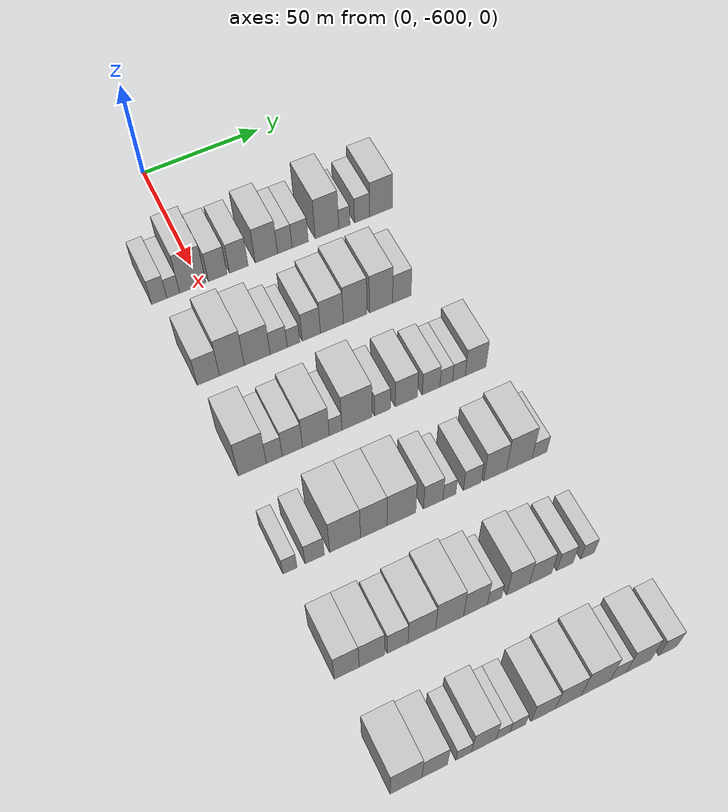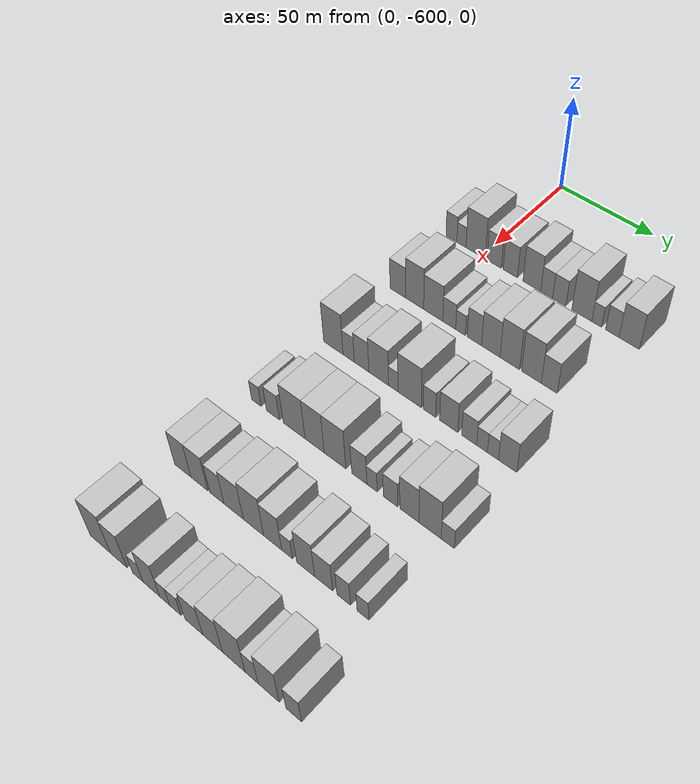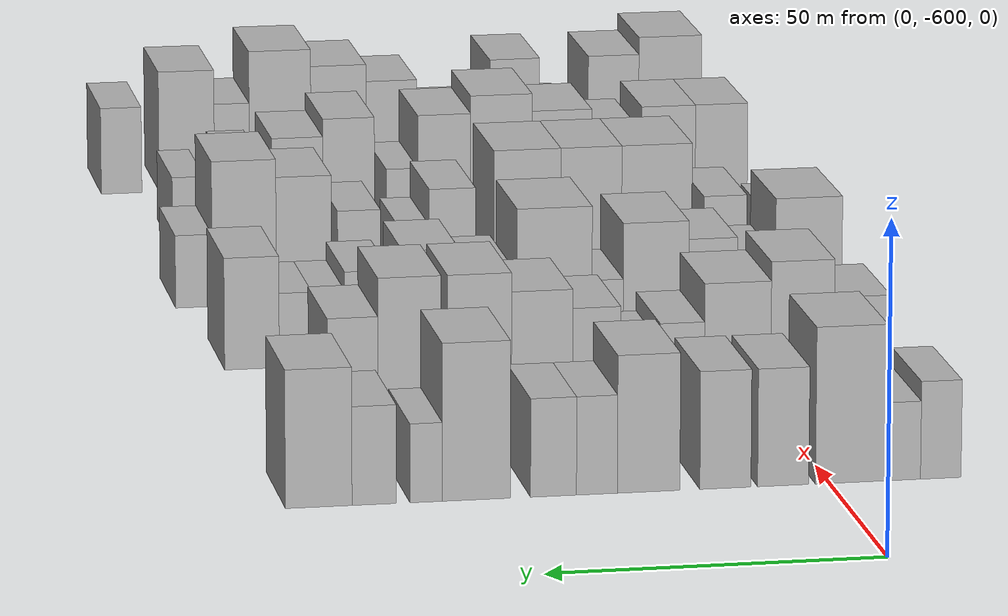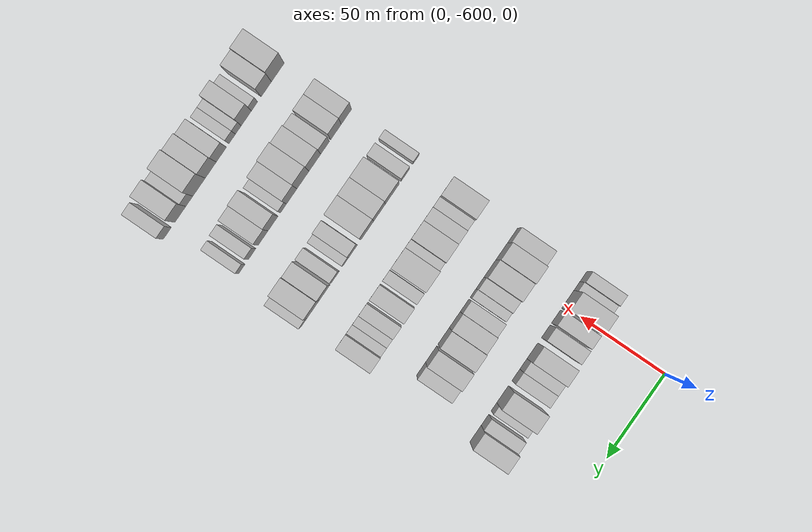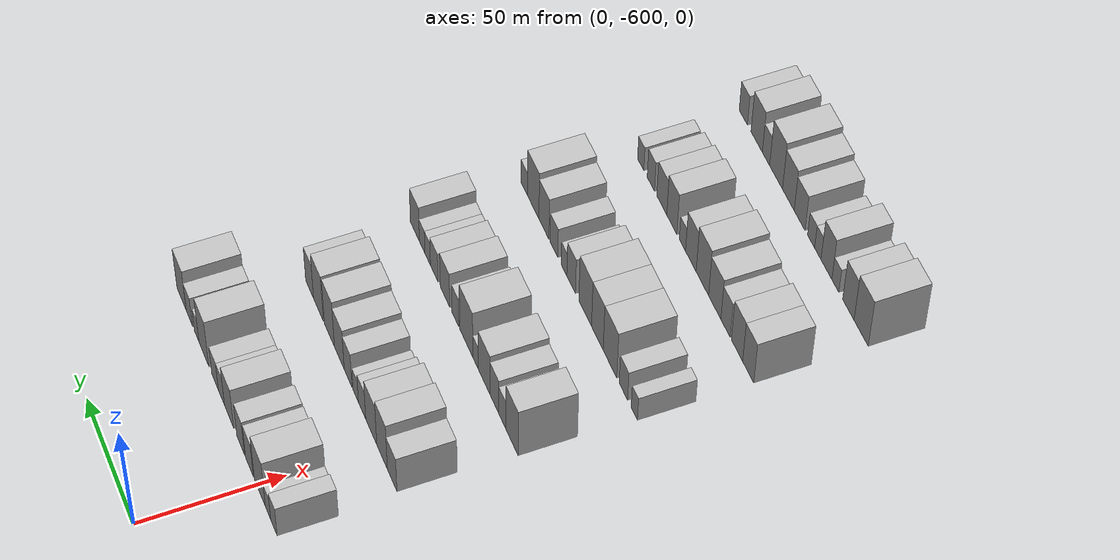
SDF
<sdf version="1.6">
 <world name="default">
  <model name="building_1">
   <static>1</static>
   <pose>50.0000 -616.9183 0 0.000000 0.000000 0.000000</pose>
   <link name="link">
    <pose>0 0 7.50 0 0 0</pose>
    <collision name="collision"><geometry><box><size>20.0000 6.1633 15.0000</size></box></geometry></collision>
    <visual name="visual">
     <cast_shadows>0</cast_shadows>
     <geometry><box><size>20.0000 6.1633 15.0000</size></box></geometry>
     <material>
      <script>
       <uri>model://HANNAS_wall/materials/scripts</uri>
       <uri>model://HANNAS_wall/materials/textures</uri>
       <name>vrc/HANNAS_wall</name>
      </script>
     </material>
    </visual>
   </link>
  </model>
  <model name="building_2">
   <static>1</static>
   <pose>50.0000 -611.2370 0 0.000000 0.000000 0.000000</pose>
   <link name="link">
    <pose>0 0 6.00 0 0 0</pose>
    <collision name="collision"><geometry><box><size>20.0000 5.1993 12.0000</size></box></geometry></collision>
    <visual name="visual">
     <cast_shadows>0</cast_shadows>
     <geometry><box><size>20.0000 5.1993 12.0000</size></box></geometry>
     <material>
      <script>
       <uri>model://HANNAS_wall/materials/scripts</uri>
       <uri>model://HANNAS_wall/materials/textures</uri>
       <name>vrc/HANNAS_wall</name>
      </script>
     </material>
    </visual>
   </link>
  </model>
  <model name="building_3">
   <static>1</static>
   <pose>50.0000 -603.2668 0 0.000000 0.000000 0.000000</pose>
   <link name="link">
    <pose>0 0 12.00 0 0 0</pose>
    <collision name="collision"><geometry><box><size>20.0000 10.7413 24.0000</size></box></geometry></collision>
    <visual name="visual">
     <cast_shadows>0</cast_shadows>
     <geometry><box><size>20.0000 10.7413 24.0000</size></box></geometry>
     <material>
      <script>
       <uri>model://HANNAS_wall/materials/scripts</uri>
       <uri>model://HANNAS_wall/materials/textures</uri>
       <name>vrc/HANNAS_wall</name>
      </script>
     </material>
    </visual>
   </link>
  </model>
  <model name="building_4">
   <static>1</static>
   <pose>50.0000 -593.0272 0 0.000000 0.000000 0.000000</pose>
   <link name="link">
    <pose>0 0 9.00 0 0 0</pose>
    <collision name="collision"><geometry><box><size>20.0000 7.7378 18.0000</size></box></geometry></collision>
    <visual name="visual">
     <cast_shadows>0</cast_shadows>
     <geometry><box><size>20.0000 7.7378 18.0000</size></box></geometry>
     <material>
      <script>
       <uri>model://HANNAS_wall/materials/scripts</uri>
       <uri>model://HANNAS_wall/materials/textures</uri>
       <name>vrc/HANNAS_wall</name>
      </script>
     </material>
    </visual>
   </link>
  </model>
  <model name="building_5">
   <static>1</static>
   <pose>50.0000 -584.3045 0 0.000000 0.000000 0.000000</pose>
   <link name="link">
    <pose>0 0 9.00 0 0 0</pose>
    <collision name="collision"><geometry><box><size>20.0000 7.7077 18.0000</size></box></geometry></collision>
    <visual name="visual">
     <cast_shadows>0</cast_shadows>
     <geometry><box><size>20.0000 7.7077 18.0000</size></box></geometry>
     <material>
      <script>
       <uri>model://HANNAS_wall/materials/scripts</uri>
       <uri>model://HANNAS_wall/materials/textures</uri>
       <name>vrc/HANNAS_wall</name>
      </script>
     </material>
    </visual>
   </link>
  </model>
  <model name="building_6">
   <static>1</static>
   <pose>50.0000 -572.7570 0 0.000000 0.000000 0.000000</pose>
   <link name="link">
    <pose>0 0 10.50 0 0 0</pose>
    <collision name="collision"><geometry><box><size>20.0000 9.3873 21.0000</size></box></geometry></collision>
    <visual name="visual">
     <cast_shadows>0</cast_shadows>
     <geometry><box><size>20.0000 9.3873 21.0000</size></box></geometry>
     <material>
      <script>
       <uri>model://HANNAS_wall/materials/scripts</uri>
       <uri>model://HANNAS_wall/materials/textures</uri>
       <name>vrc/HANNAS_wall</name>
      </script>
     </material>
    </visual>
   </link>
  </model>
  <model name="building_7">
   <static>1</static>
   <pose>50.0000 -564.9902 0 0.000000 0.000000 0.000000</pose>
   <link name="link">
    <pose>0 0 7.50 0 0 0</pose>
    <collision name="collision"><geometry><box><size>20.0000 6.1462 15.0000</size></box></geometry></collision>
    <visual name="visual">
     <cast_shadows>0</cast_shadows>
     <geometry><box><size>20.0000 6.1462 15.0000</size></box></geometry>
     <material>
      <script>
       <uri>model://HANNAS_wall/materials/scripts</uri>
       <uri>model://HANNAS_wall/materials/textures</uri>
       <name>vrc/HANNAS_wall</name>
      </script>
     </material>
    </visual>
   </link>
  </model>
  <model name="building_8">
   <static>1</static>
   <pose>50.0000 -558.4783 0 0.000000 0.000000 0.000000</pose>
   <link name="link">
    <pose>0 0 7.50 0 0 0</pose>
    <collision name="collision"><geometry><box><size>20.0000 6.8775 15.0000</size></box></geometry></collision>
    <visual name="visual">
     <cast_shadows>0</cast_shadows>
     <geometry><box><size>20.0000 6.8775 15.0000</size></box></geometry>
     <material>
      <script>
       <uri>model://HANNAS_wall/materials/scripts</uri>
       <uri>model://HANNAS_wall/materials/textures</uri>
       <name>vrc/HANNAS_wall</name>
      </script>
     </material>
    </visual>
   </link>
  </model>
  <model name="building_9">
   <static>1</static>
   <pose>50.0000 -546.9646 0 0.000000 0.000000 0.000000</pose>
   <link name="link">
    <pose>0 0 12.00 0 0 0</pose>
    <collision name="collision"><geometry><box><size>20.0000 10.1499 24.0000</size></box></geometry></collision>
    <visual name="visual">
     <cast_shadows>0</cast_shadows>
     <geometry><box><size>20.0000 10.1499 24.0000</size></box></geometry>
     <material>
      <script>
       <uri>model://HANNAS_wall/materials/scripts</uri>
       <uri>model://HANNAS_wall/materials/textures</uri>
       <name>vrc/HANNAS_wall</name>
      </script>
     </material>
    </visual>
   </link>
  </model>
  <model name="building_10">
   <static>1</static>
   <pose>50.0000 -539.4749 0 0.000000 0.000000 0.000000</pose>
   <link name="link">
    <pose>0 0 6.00 0 0 0</pose>
    <collision name="collision"><geometry><box><size>20.0000 4.8296 12.0000</size></box></geometry></collision>
    <visual name="visual">
     <cast_shadows>0</cast_shadows>
     <geometry><box><size>20.0000 4.8296 12.0000</size></box></geometry>
     <material>
      <script>
       <uri>model://HANNAS_wall/materials/scripts</uri>
       <uri>model://HANNAS_wall/materials/textures</uri>
       <name>vrc/HANNAS_wall</name>
      </script>
     </material>
    </visual>
   </link>
  </model>
  <model name="building_11">
   <static>1</static>
   <pose>50.0000 -531.7551 0 0.000000 0.000000 0.000000</pose>
   <link name="link">
    <pose>0 0 7.50 0 0 0</pose>
    <collision name="collision"><geometry><box><size>20.0000 6.6100 15.0000</size></box></geometry></collision>
    <visual name="visual">
     <cast_shadows>0</cast_shadows>
     <geometry><box><size>20.0000 6.6100 15.0000</size></box></geometry>
     <material>
      <script>
       <uri>model://HANNAS_wall/materials/scripts</uri>
       <uri>model://HANNAS_wall/materials/textures</uri>
       <name>vrc/HANNAS_wall</name>
      </script>
     </material>
    </visual>
   </link>
  </model>
  <model name="building_12">
   <static>1</static>
   <pose>50.0000 -523.5142 0 0.000000 0.000000 0.000000</pose>
   <link name="link">
    <pose>0 0 10.50 0 0 0</pose>
    <collision name="collision"><geometry><box><size>20.0000 9.8717 21.0000</size></box></geometry></collision>
    <visual name="visual">
     <cast_shadows>0</cast_shadows>
     <geometry><box><size>20.0000 9.8717 21.0000</size></box></geometry>
     <material>
      <script>
       <uri>model://HANNAS_wall/materials/scripts</uri>
       <uri>model://HANNAS_wall/materials/textures</uri>
       <name>vrc/HANNAS_wall</name>
      </script>
     </material>
    </visual>
   </link>
  </model>
  <model name="building_143">
   <static>1</static>
   <pose>90.0000 -613.6056 0 0.000000 0.000000 0.000000</pose>
   <link name="link">
    <pose>0 0 9.00 0 0 0</pose>
    <collision name="collision"><geometry><box><size>20.0000 8.7888 18.0000</size></box></geometry></collision>
    <visual name="visual">
     <cast_shadows>0</cast_shadows>
     <geometry><box><size>20.0000 8.7888 18.0000</size></box></geometry>
     <material>
      <script>
       <uri>model://HANNAS_wall/materials/scripts</uri>
       <uri>model://HANNAS_wall/materials/textures</uri>
       <name>vrc/HANNAS_wall</name>
      </script>
     </material>
    </visual>
   </link>
  </model>
  <model name="building_144">
   <static>1</static>
   <pose>90.0000 -604.2729 0 0.000000 0.000000 0.000000</pose>
   <link name="link">
    <pose>0 0 12.00 0 0 0</pose>
    <collision name="collision"><geometry><box><size>20.0000 9.8767 24.0000</size></box></geometry></collision>
    <visual name="visual">
     <cast_shadows>0</cast_shadows>
     <geometry><box><size>20.0000 9.8767 24.0000</size></box></geometry>
     <material>
      <script>
       <uri>model://HANNAS_wall/materials/scripts</uri>
       <uri>model://HANNAS_wall/materials/textures</uri>
       <name>vrc/HANNAS_wall</name>
      </script>
     </material>
    </visual>
   </link>
  </model>
  <model name="building_145">
   <static>1</static>
   <pose>90.0000 -594.1526 0 0.000000 0.000000 0.000000</pose>
   <link name="link">
    <pose>0 0 10.50 0 0 0</pose>
    <collision name="collision"><geometry><box><size>20.0000 10.3638 21.0000</size></box></geometry></collision>
    <visual name="visual">
     <cast_shadows>0</cast_shadows>
     <geometry><box><size>20.0000 10.3638 21.0000</size></box></geometry>
     <material>
      <script>
       <uri>model://HANNAS_wall/materials/scripts</uri>
       <uri>model://HANNAS_wall/materials/textures</uri>
       <name>vrc/HANNAS_wall</name>
      </script>
     </material>
    </visual>
   </link>
  </model>
  <model name="building_146">
   <static>1</static>
   <pose>90.0000 -585.5412 0 0.000000 0.000000 0.000000</pose>
   <link name="link">
    <pose>0 0 7.50 0 0 0</pose>
    <collision name="collision"><geometry><box><size>20.0000 6.8589 15.0000</size></box></geometry></collision>
    <visual name="visual">
     <cast_shadows>0</cast_shadows>
     <geometry><box><size>20.0000 6.8589 15.0000</size></box></geometry>
     <material>
      <script>
       <uri>model://HANNAS_wall/materials/scripts</uri>
       <uri>model://HANNAS_wall/materials/textures</uri>
       <name>vrc/HANNAS_wall</name>
      </script>
     </material>
    </visual>
   </link>
  </model>
  <model name="building_147">
   <static>1</static>
   <pose>90.0000 -579.5454 0 0.000000 0.000000 0.000000</pose>
   <link name="link">
    <pose>0 0 6.00 0 0 0</pose>
    <collision name="collision"><geometry><box><size>20.0000 5.1327 12.0000</size></box></geometry></collision>
    <visual name="visual">
     <cast_shadows>0</cast_shadows>
     <geometry><box><size>20.0000 5.1327 12.0000</size></box></geometry>
     <material>
      <script>
       <uri>model://HANNAS_wall/materials/scripts</uri>
       <uri>model://HANNAS_wall/materials/textures</uri>
       <name>vrc/HANNAS_wall</name>
      </script>
     </material>
    </visual>
   </link>
  </model>
  <model name="building_148">
   <static>1</static>
   <pose>90.0000 -572.2633 0 0.000000 0.000000 0.000000</pose>
   <link name="link">
    <pose>0 0 9.00 0 0 0</pose>
    <collision name="collision"><geometry><box><size>20.0000 7.4315 18.0000</size></box></geometry></collision>
    <visual name="visual">
     <cast_shadows>0</cast_shadows>
     <geometry><box><size>20.0000 7.4315 18.0000</size></box></geometry>
     <material>
      <script>
       <uri>model://HANNAS_wall/materials/scripts</uri>
       <uri>model://HANNAS_wall/materials/textures</uri>
       <name>vrc/HANNAS_wall</name>
      </script>
     </material>
    </visual>
   </link>
  </model>
  <model name="building_149">
   <static>1</static>
   <pose>90.0000 -563.8164 0 0.000000 0.000000 0.000000</pose>
   <link name="link">
    <pose>0 0 10.50 0 0 0</pose>
    <collision name="collision"><geometry><box><size>20.0000 9.4622 21.0000</size></box></geometry></collision>
    <visual name="visual">
     <cast_shadows>0</cast_shadows>
     <geometry><box><size>20.0000 9.4622 21.0000</size></box></geometry>
     <material>
      <script>
       <uri>model://HANNAS_wall/materials/scripts</uri>
       <uri>model://HANNAS_wall/materials/textures</uri>
       <name>vrc/HANNAS_wall</name>
      </script>
     </material>
    </visual>
   </link>
  </model>
  <model name="building_150">
   <static>1</static>
   <pose>90.0000 -554.1654 0 0.000000 0.000000 0.000000</pose>
   <link name="link">
    <pose>0 0 12.00 0 0 0</pose>
    <collision name="collision"><geometry><box><size>20.0000 9.8398 24.0000</size></box></geometry></collision>
    <visual name="visual">
     <cast_shadows>0</cast_shadows>
     <geometry><box><size>20.0000 9.8398 24.0000</size></box></geometry>
     <material>
      <script>
       <uri>model://HANNAS_wall/materials/scripts</uri>
       <uri>model://HANNAS_wall/materials/textures</uri>
       <name>vrc/HANNAS_wall</name>
      </script>
     </material>
    </visual>
   </link>
  </model>
  <model name="building_151">
   <static>1</static>
   <pose>90.0000 -543.3971 0 0.000000 0.000000 0.000000</pose>
   <link name="link">
    <pose>0 0 12.00 0 0 0</pose>
    <collision name="collision"><geometry><box><size>20.0000 9.6969 24.0000</size></box></geometry></collision>
    <visual name="visual">
     <cast_shadows>0</cast_shadows>
     <geometry><box><size>20.0000 9.6969 24.0000</size></box></geometry>
     <material>
      <script>
       <uri>model://HANNAS_wall/materials/scripts</uri>
       <uri>model://HANNAS_wall/materials/textures</uri>
       <name>vrc/HANNAS_wall</name>
      </script>
     </material>
    </visual>
   </link>
  </model>
  <model name="building_152">
   <static>1</static>
   <pose>90.0000 -534.6614 0 0.000000 0.000000 0.000000</pose>
   <link name="link">
    <pose>0 0 9.00 0 0 0</pose>
    <collision name="collision"><geometry><box><size>20.0000 7.7745 18.0000</size></box></geometry></collision>
    <visual name="visual">
     <cast_shadows>0</cast_shadows>
     <geometry><box><size>20.0000 7.7745 18.0000</size></box></geometry>
     <material>
      <script>
       <uri>model://HANNAS_wall/materials/scripts</uri>
       <uri>model://HANNAS_wall/materials/textures</uri>
       <name>vrc/HANNAS_wall</name>
      </script>
     </material>
    </visual>
   </link>
  </model>
  <model name="building_278">
   <static>1</static>
   <pose>130.0000 -613.6432 0 0.000000 0.000000 0.000000</pose>
   <link name="link">
    <pose>0 0 12.00 0 0 0</pose>
    <collision name="collision"><geometry><box><size>20.0000 10.7137 24.0000</size></box></geometry></collision>
    <visual name="visual">
     <cast_shadows>0</cast_shadows>
     <geometry><box><size>20.0000 10.7137 24.0000</size></box></geometry>
     <material>
      <script>
       <uri>model://HANNAS_wall/materials/scripts</uri>
       <uri>model://HANNAS_wall/materials/textures</uri>
       <name>vrc/HANNAS_wall</name>
      </script>
     </material>
    </visual>
   </link>
  </model>
  <model name="building_279">
   <static>1</static>
   <pose>130.0000 -605.2138 0 0.000000 0.000000 0.000000</pose>
   <link name="link">
    <pose>0 0 7.50 0 0 0</pose>
    <collision name="collision"><geometry><box><size>20.0000 6.1450 15.0000</size></box></geometry></collision>
    <visual name="visual">
     <cast_shadows>0</cast_shadows>
     <geometry><box><size>20.0000 6.1450 15.0000</size></box></geometry>
     <material>
      <script>
       <uri>model://HANNAS_wall/materials/scripts</uri>
       <uri>model://HANNAS_wall/materials/textures</uri>
       <name>vrc/HANNAS_wall</name>
      </script>
     </material>
    </visual>
   </link>
  </model>
  <model name="building_280">
   <static>1</static>
   <pose>130.0000 -598.2308 0 0.000000 0.000000 0.000000</pose>
   <link name="link">
    <pose>0 0 9.00 0 0 0</pose>
    <collision name="collision"><geometry><box><size>20.0000 7.8210 18.0000</size></box></geometry></collision>
    <visual name="visual">
     <cast_shadows>0</cast_shadows>
     <geometry><box><size>20.0000 7.8210 18.0000</size></box></geometry>
     <material>
      <script>
       <uri>model://HANNAS_wall/materials/scripts</uri>
       <uri>model://HANNAS_wall/materials/textures</uri>
       <name>vrc/HANNAS_wall</name>
      </script>
     </material>
    </visual>
   </link>
  </model>
  <model name="building_281">
   <static>1</static>
   <pose>130.0000 -589.0757 0 0.000000 0.000000 0.000000</pose>
   <link name="link">
    <pose>0 0 10.50 0 0 0</pose>
    <collision name="collision"><geometry><box><size>20.0000 10.4893 21.0000</size></box></geometry></collision>
    <visual name="visual">
     <cast_shadows>0</cast_shadows>
     <geometry><box><size>20.0000 10.4893 21.0000</size></box></geometry>
     <material>
      <script>
       <uri>model://HANNAS_wall/materials/scripts</uri>
       <uri>model://HANNAS_wall/materials/textures</uri>
       <name>vrc/HANNAS_wall</name>
      </script>
     </material>
    </visual>
   </link>
  </model>
  <model name="building_282">
   <static>1</static>
   <pose>130.0000 -581.3388 0 0.000000 0.000000 0.000000</pose>
   <link name="link">
    <pose>0 0 6.00 0 0 0</pose>
    <collision name="collision"><geometry><box><size>20.0000 4.9845 12.0000</size></box></geometry></collision>
    <visual name="visual">
     <cast_shadows>0</cast_shadows>
     <geometry><box><size>20.0000 4.9845 12.0000</size></box></geometry>
     <material>
      <script>
       <uri>model://HANNAS_wall/materials/scripts</uri>
       <uri>model://HANNAS_wall/materials/textures</uri>
       <name>vrc/HANNAS_wall</name>
      </script>
     </material>
    </visual>
   </link>
  </model>
  <model name="building_283">
   <static>1</static>
   <pose>130.0000 -572.8759 0 0.000000 0.000000 0.000000</pose>
   <link name="link">
    <pose>0 0 12.00 0 0 0</pose>
    <collision name="collision"><geometry><box><size>20.0000 11.9412 24.0000</size></box></geometry></collision>
    <visual name="visual">
     <cast_shadows>0</cast_shadows>
     <geometry><box><size>20.0000 11.9412 24.0000</size></box></geometry>
     <material>
      <script>
       <uri>model://HANNAS_wall/materials/scripts</uri>
       <uri>model://HANNAS_wall/materials/textures</uri>
       <name>vrc/HANNAS_wall</name>
      </script>
     </material>
    </visual>
   </link>
  </model>
  <model name="building_284">
   <static>1</static>
   <pose>130.0000 -562.7772 0 0.000000 0.000000 0.000000</pose>
   <link name="link">
    <pose>0 0 7.50 0 0 0</pose>
    <collision name="collision"><geometry><box><size>20.0000 6.2563 15.0000</size></box></geometry></collision>
    <visual name="visual">
     <cast_shadows>0</cast_shadows>
     <geometry><box><size>20.0000 6.2563 15.0000</size></box></geometry>
     <material>
      <script>
       <uri>model://HANNAS_wall/materials/scripts</uri>
       <uri>model://HANNAS_wall/materials/textures</uri>
       <name>vrc/HANNAS_wall</name>
      </script>
     </material>
    </visual>
   </link>
  </model>
  <model name="building_285">
   <static>1</static>
   <pose>130.0000 -553.1775 0 0.000000 0.000000 0.000000</pose>
   <link name="link">
    <pose>0 0 9.00 0 0 0</pose>
    <collision name="collision"><geometry><box><size>20.0000 8.9432 18.0000</size></box></geometry></collision>
    <visual name="visual">
     <cast_shadows>0</cast_shadows>
     <geometry><box><size>20.0000 8.9432 18.0000</size></box></geometry>
     <material>
      <script>
       <uri>model://HANNAS_wall/materials/scripts</uri>
       <uri>model://HANNAS_wall/materials/textures</uri>
       <name>vrc/HANNAS_wall</name>
      </script>
     </material>
    </visual>
   </link>
  </model>
  <model name="building_286">
   <static>1</static>
   <pose>130.0000 -543.0987 0 0.000000 0.000000 0.000000</pose>
   <link name="link">
    <pose>0 0 7.50 0 0 0</pose>
    <collision name="collision"><geometry><box><size>20.0000 7.2145 15.0000</size></box></geometry></collision>
    <visual name="visual">
     <cast_shadows>0</cast_shadows>
     <geometry><box><size>20.0000 7.2145 15.0000</size></box></geometry>
     <material>
      <script>
       <uri>model://HANNAS_wall/materials/scripts</uri>
       <uri>model://HANNAS_wall/materials/textures</uri>
       <name>vrc/HANNAS_wall</name>
      </script>
     </material>
    </visual>
   </link>
  </model>
  <model name="building_287">
   <static>1</static>
   <pose>130.0000 -536.9005 0 0.000000 0.000000 0.000000</pose>
   <link name="link">
    <pose>0 0 6.00 0 0 0</pose>
    <collision name="collision"><geometry><box><size>20.0000 5.1817 12.0000</size></box></geometry></collision>
    <visual name="visual">
     <cast_shadows>0</cast_shadows>
     <geometry><box><size>20.0000 5.1817 12.0000</size></box></geometry>
     <material>
      <script>
       <uri>model://HANNAS_wall/materials/scripts</uri>
       <uri>model://HANNAS_wall/materials/textures</uri>
       <name>vrc/HANNAS_wall</name>
      </script>
     </material>
    </visual>
   </link>
  </model>
  <model name="building_288">
   <static>1</static>
   <pose>130.0000 -531.6961 0 0.000000 0.000000 0.000000</pose>
   <link name="link">
    <pose>0 0 6.00 0 0 0</pose>
    <collision name="collision"><geometry><box><size>20.0000 5.2272 12.0000</size></box></geometry></collision>
    <visual name="visual">
     <cast_shadows>0</cast_shadows>
     <geometry><box><size>20.0000 5.2272 12.0000</size></box></geometry>
     <material>
      <script>
       <uri>model://HANNAS_wall/materials/scripts</uri>
       <uri>model://HANNAS_wall/materials/textures</uri>
       <name>vrc/HANNAS_wall</name>
      </script>
     </material>
    </visual>
   </link>
  </model>
  <model name="building_289">
   <static>1</static>
   <pose>130.0000 -524.7653 0 0.000000 0.000000 0.000000</pose>
   <link name="link">
    <pose>0 0 9.00 0 0 0</pose>
    <collision name="collision"><geometry><box><size>20.0000 8.6344 18.0000</size></box></geometry></collision>
    <visual name="visual">
     <cast_shadows>0</cast_shadows>
     <geometry><box><size>20.0000 8.6344 18.0000</size></box></geometry>
     <material>
      <script>
       <uri>model://HANNAS_wall/materials/scripts</uri>
       <uri>model://HANNAS_wall/materials/textures</uri>
       <name>vrc/HANNAS_wall</name>
      </script>
     </material>
    </visual>
   </link>
  </model>
  <model name="building_410">
   <static>1</static>
   <pose>170.0000 -617.4011 0 0.000000 0.000000 0.000000</pose>
   <link name="link">
    <pose>0 0 6.00 0 0 0</pose>
    <collision name="collision"><geometry><box><size>20.0000 5.1977 12.0000</size></box></geometry></collision>
    <visual name="visual">
     <cast_shadows>0</cast_shadows>
     <geometry><box><size>20.0000 5.1977 12.0000</size></box></geometry>
     <material>
      <script>
       <uri>model://HANNAS_wall/materials/scripts</uri>
       <uri>model://HANNAS_wall/materials/textures</uri>
       <name>vrc/HANNAS_wall</name>
      </script>
     </material>
    </visual>
   </link>
  </model>
  <model name="building_411">
   <static>1</static>
   <pose>170.0000 -608.2315 0 0.000000 0.000000 0.000000</pose>
   <link name="link">
    <pose>0 0 7.50 0 0 0</pose>
    <collision name="collision"><geometry><box><size>20.0000 7.1416 15.0000</size></box></geometry></collision>
    <visual name="visual">
     <cast_shadows>0</cast_shadows>
     <geometry><box><size>20.0000 7.1416 15.0000</size></box></geometry>
     <material>
      <script>
       <uri>model://HANNAS_wall/materials/scripts</uri>
       <uri>model://HANNAS_wall/materials/textures</uri>
       <name>vrc/HANNAS_wall</name>
      </script>
     </material>
    </visual>
   </link>
  </model>
  <model name="building_412">
   <static>1</static>
   <pose>170.0000 -596.8510 0 0.000000 0.000000 0.000000</pose>
   <link name="link">
    <pose>0 0 12.00 0 0 0</pose>
    <collision name="collision"><geometry><box><size>20.0000 11.6194 24.0000</size></box></geometry></collision>
    <visual name="visual">
     <cast_shadows>0</cast_shadows>
     <geometry><box><size>20.0000 11.6194 24.0000</size></box></geometry>
     <material>
      <script>
       <uri>model://HANNAS_wall/materials/scripts</uri>
       <uri>model://HANNAS_wall/materials/textures</uri>
       <name>vrc/HANNAS_wall</name>
      </script>
     </material>
    </visual>
   </link>
  </model>
  <model name="building_413">
   <static>1</static>
   <pose>170.0000 -586.0185 0 0.000000 0.000000 0.000000</pose>
   <link name="link">
    <pose>0 0 12.00 0 0 0</pose>
    <collision name="collision"><geometry><box><size>20.0000 10.0457 24.0000</size></box></geometry></collision>
    <visual name="visual">
     <cast_shadows>0</cast_shadows>
     <geometry><box><size>20.0000 10.0457 24.0000</size></box></geometry>
     <material>
      <script>
       <uri>model://HANNAS_wall/materials/scripts</uri>
       <uri>model://HANNAS_wall/materials/textures</uri>
       <name>vrc/HANNAS_wall</name>
      </script>
     </material>
    </visual>
   </link>
  </model>
  <model name="building_414">
   <static>1</static>
   <pose>170.0000 -575.4777 0 0.000000 0.000000 0.000000</pose>
   <link name="link">
    <pose>0 0 12.00 0 0 0</pose>
    <collision name="collision"><geometry><box><size>20.0000 11.0358 24.0000</size></box></geometry></collision>
    <visual name="visual">
     <cast_shadows>0</cast_shadows>
     <geometry><box><size>20.0000 11.0358 24.0000</size></box></geometry>
     <material>
      <script>
       <uri>model://HANNAS_wall/materials/scripts</uri>
       <uri>model://HANNAS_wall/materials/textures</uri>
       <name>vrc/HANNAS_wall</name>
      </script>
     </material>
    </visual>
   </link>
  </model>
  <model name="building_415">
   <static>1</static>
   <pose>170.0000 -563.1759 0 0.000000 0.000000 0.000000</pose>
   <link name="link">
    <pose>0 0 9.00 0 0 0</pose>
    <collision name="collision"><geometry><box><size>20.0000 7.5678 18.0000</size></box></geometry></collision>
    <visual name="visual">
     <cast_shadows>0</cast_shadows>
     <geometry><box><size>20.0000 7.5678 18.0000</size></box></geometry>
     <material>
      <script>
       <uri>model://HANNAS_wall/materials/scripts</uri>
       <uri>model://HANNAS_wall/materials/textures</uri>
       <name>vrc/HANNAS_wall</name>
      </script>
     </material>
    </visual>
   </link>
  </model>
  <model name="building_416">
   <static>1</static>
   <pose>170.0000 -556.8699 0 0.000000 0.000000 0.000000</pose>
   <link name="link">
    <pose>0 0 6.00 0 0 0</pose>
    <collision name="collision"><geometry><box><size>20.0000 5.0443 12.0000</size></box></geometry></collision>
    <visual name="visual">
     <cast_shadows>0</cast_shadows>
     <geometry><box><size>20.0000 5.0443 12.0000</size></box></geometry>
     <material>
      <script>
       <uri>model://HANNAS_wall/materials/scripts</uri>
       <uri>model://HANNAS_wall/materials/textures</uri>
       <name>vrc/HANNAS_wall</name>
      </script>
     </material>
    </visual>
   </link>
  </model>
  <model name="building_417">
   <static>1</static>
   <pose>170.0000 -547.8493 0 0.000000 0.000000 0.000000</pose>
   <link name="link">
    <pose>0 0 7.50 0 0 0</pose>
    <collision name="collision"><geometry><box><size>20.0000 6.9968 15.0000</size></box></geometry></collision>
    <visual name="visual">
     <cast_shadows>0</cast_shadows>
     <geometry><box><size>20.0000 6.9968 15.0000</size></box></geometry>
     <material>
      <script>
       <uri>model://HANNAS_wall/materials/scripts</uri>
       <uri>model://HANNAS_wall/materials/textures</uri>
       <name>vrc/HANNAS_wall</name>
      </script>
     </material>
    </visual>
   </link>
  </model>
  <model name="building_418">
   <static>1</static>
   <pose>170.0000 -538.8398 0 0.000000 0.000000 0.000000</pose>
   <link name="link">
    <pose>0 0 10.50 0 0 0</pose>
    <collision name="collision"><geometry><box><size>20.0000 9.0223 21.0000</size></box></geometry></collision>
    <visual name="visual">
     <cast_shadows>0</cast_shadows>
     <geometry><box><size>20.0000 9.0223 21.0000</size></box></geometry>
     <material>
      <script>
       <uri>model://HANNAS_wall/materials/scripts</uri>
       <uri>model://HANNAS_wall/materials/textures</uri>
       <name>vrc/HANNAS_wall</name>
      </script>
     </material>
    </visual>
   </link>
  </model>
  <model name="building_419">
   <static>1</static>
   <pose>170.0000 -529.1072 0 0.000000 0.000000 0.000000</pose>
   <link name="link">
    <pose>0 0 12.00 0 0 0</pose>
    <collision name="collision"><geometry><box><size>20.0000 10.4429 24.0000</size></box></geometry></collision>
    <visual name="visual">
     <cast_shadows>0</cast_shadows>
     <geometry><box><size>20.0000 10.4429 24.0000</size></box></geometry>
     <material>
      <script>
       <uri>model://HANNAS_wall/materials/scripts</uri>
       <uri>model://HANNAS_wall/materials/textures</uri>
       <name>vrc/HANNAS_wall</name>
      </script>
     </material>
    </visual>
   </link>
  </model>
  <model name="building_420">
   <static>1</static>
   <pose>170.0000 -520.8958 0 0.000000 0.000000 0.000000</pose>
   <link name="link">
    <pose>0 0 6.00 0 0 0</pose>
    <collision name="collision"><geometry><box><size>20.0000 5.9798 12.0000</size></box></geometry></collision>
    <visual name="visual">
     <cast_shadows>0</cast_shadows>
     <geometry><box><size>20.0000 5.9798 12.0000</size></box></geometry>
     <material>
      <script>
       <uri>model://HANNAS_wall/materials/scripts</uri>
       <uri>model://HANNAS_wall/materials/textures</uri>
       <name>vrc/HANNAS_wall</name>
      </script>
     </material>
    </visual>
   </link>
  </model>
  <model name="building_547">
   <static>1</static>
   <pose>210.0000 -615.5370 0 0.000000 0.000000 0.000000</pose>
   <link name="link">
    <pose>0 0 10.50 0 0 0</pose>
    <collision name="collision"><geometry><box><size>20.0000 8.9260 21.0000</size></box></geometry></collision>
    <visual name="visual">
     <cast_shadows>0</cast_shadows>
     <geometry><box><size>20.0000 8.9260 21.0000</size></box></geometry>
     <material>
      <script>
       <uri>model://HANNAS_wall/materials/scripts</uri>
       <uri>model://HANNAS_wall/materials/textures</uri>
       <name>vrc/HANNAS_wall</name>
      </script>
     </material>
    </visual>
   </link>
  </model>
  <model name="building_548">
   <static>1</static>
   <pose>210.0000 -606.5114 0 0.000000 0.000000 0.000000</pose>
   <link name="link">
    <pose>0 0 10.50 0 0 0</pose>
    <collision name="collision"><geometry><box><size>20.0000 9.1251 21.0000</size></box></geometry></collision>
    <visual name="visual">
     <cast_shadows>0</cast_shadows>
     <geometry><box><size>20.0000 9.1251 21.0000</size></box></geometry>
     <material>
      <script>
       <uri>model://HANNAS_wall/materials/scripts</uri>
       <uri>model://HANNAS_wall/materials/textures</uri>
       <name>vrc/HANNAS_wall</name>
      </script>
     </material>
    </visual>
   </link>
  </model>
  <model name="building_549">
   <static>1</static>
   <pose>210.0000 -597.1582 0 0.000000 0.000000 0.000000</pose>
   <link name="link">
    <pose>0 0 9.00 0 0 0</pose>
    <collision name="collision"><geometry><box><size>20.0000 7.5813 18.0000</size></box></geometry></collision>
    <visual name="visual">
     <cast_shadows>0</cast_shadows>
     <geometry><box><size>20.0000 7.5813 18.0000</size></box></geometry>
     <material>
      <script>
       <uri>model://HANNAS_wall/materials/scripts</uri>
       <uri>model://HANNAS_wall/materials/textures</uri>
       <name>vrc/HANNAS_wall</name>
      </script>
     </material>
    </visual>
   </link>
  </model>
  <model name="building_550">
   <static>1</static>
   <pose>210.0000 -588.3164 0 0.000000 0.000000 0.000000</pose>
   <link name="link">
    <pose>0 0 10.50 0 0 0</pose>
    <collision name="collision"><geometry><box><size>20.0000 10.1022 21.0000</size></box></geometry></collision>
    <visual name="visual">
     <cast_shadows>0</cast_shadows>
     <geometry><box><size>20.0000 10.1022 21.0000</size></box></geometry>
     <material>
      <script>
       <uri>model://HANNAS_wall/materials/scripts</uri>
       <uri>model://HANNAS_wall/materials/textures</uri>
       <name>vrc/HANNAS_wall</name>
      </script>
     </material>
    </visual>
   </link>
  </model>
  <model name="building_551">
   <static>1</static>
   <pose>210.0000 -578.0612 0 0.000000 0.000000 0.000000</pose>
   <link name="link">
    <pose>0 0 12.00 0 0 0</pose>
    <collision name="collision"><geometry><box><size>20.0000 10.4082 24.0000</size></box></geometry></collision>
    <visual name="visual">
     <cast_shadows>0</cast_shadows>
     <geometry><box><size>20.0000 10.4082 24.0000</size></box></geometry>
     <material>
      <script>
       <uri>model://HANNAS_wall/materials/scripts</uri>
       <uri>model://HANNAS_wall/materials/textures</uri>
       <name>vrc/HANNAS_wall</name>
      </script>
     </material>
    </visual>
   </link>
  </model>
  <model name="building_552">
   <static>1</static>
   <pose>210.0000 -568.3736 0 0.000000 0.000000 0.000000</pose>
   <link name="link">
    <pose>0 0 10.50 0 0 0</pose>
    <collision name="collision"><geometry><box><size>20.0000 8.9670 21.0000</size></box></geometry></collision>
    <visual name="visual">
     <cast_shadows>0</cast_shadows>
     <geometry><box><size>20.0000 8.9670 21.0000</size></box></geometry>
     <material>
      <script>
       <uri>model://HANNAS_wall/materials/scripts</uri>
       <uri>model://HANNAS_wall/materials/textures</uri>
       <name>vrc/HANNAS_wall</name>
      </script>
     </material>
    </visual>
   </link>
  </model>
  <model name="building_553">
   <static>1</static>
   <pose>210.0000 -561.2310 0 0.000000 0.000000 0.000000</pose>
   <link name="link">
    <pose>0 0 6.00 0 0 0</pose>
    <collision name="collision"><geometry><box><size>20.0000 5.3183 12.0000</size></box></geometry></collision>
    <visual name="visual">
     <cast_shadows>0</cast_shadows>
     <geometry><box><size>20.0000 5.3183 12.0000</size></box></geometry>
     <material>
      <script>
       <uri>model://HANNAS_wall/materials/scripts</uri>
       <uri>model://HANNAS_wall/materials/textures</uri>
       <name>vrc/HANNAS_wall</name>
      </script>
     </material>
    </visual>
   </link>
  </model>
  <model name="building_554">
   <static>1</static>
   <pose>210.0000 -552.2308 0 0.000000 0.000000 0.000000</pose>
   <link name="link">
    <pose>0 0 10.50 0 0 0</pose>
    <collision name="collision"><geometry><box><size>20.0000 8.6820 21.0000</size></box></geometry></collision>
    <visual name="visual">
     <cast_shadows>0</cast_shadows>
     <geometry><box><size>20.0000 8.6820 21.0000</size></box></geometry>
     <material>
      <script>
       <uri>model://HANNAS_wall/materials/scripts</uri>
       <uri>model://HANNAS_wall/materials/textures</uri>
       <name>vrc/HANNAS_wall</name>
      </script>
     </material>
    </visual>
   </link>
  </model>
  <model name="building_555">
   <static>1</static>
   <pose>210.0000 -543.6025 0 0.000000 0.000000 0.000000</pose>
   <link name="link">
    <pose>0 0 9.00 0 0 0</pose>
    <collision name="collision"><geometry><box><size>20.0000 8.5747 18.0000</size></box></geometry></collision>
    <visual name="visual">
     <cast_shadows>0</cast_shadows>
     <geometry><box><size>20.0000 8.5747 18.0000</size></box></geometry>
     <material>
      <script>
       <uri>model://HANNAS_wall/materials/scripts</uri>
       <uri>model://HANNAS_wall/materials/textures</uri>
       <name>vrc/HANNAS_wall</name>
      </script>
     </material>
    </visual>
   </link>
  </model>
  <model name="building_556">
   <static>1</static>
   <pose>210.0000 -534.1498 0 0.000000 0.000000 0.000000</pose>
   <link name="link">
    <pose>0 0 7.50 0 0 0</pose>
    <collision name="collision"><geometry><box><size>20.0000 6.3306 15.0000</size></box></geometry></collision>
    <visual name="visual">
     <cast_shadows>0</cast_shadows>
     <geometry><box><size>20.0000 6.3306 15.0000</size></box></geometry>
     <material>
      <script>
       <uri>model://HANNAS_wall/materials/scripts</uri>
       <uri>model://HANNAS_wall/materials/textures</uri>
       <name>vrc/HANNAS_wall</name>
      </script>
     </material>
    </visual>
   </link>
  </model>
  <model name="building_557">
   <static>1</static>
   <pose>210.0000 -525.2790 0 0.000000 0.000000 0.000000</pose>
   <link name="link">
    <pose>0 0 6.00 0 0 0</pose>
    <collision name="collision"><geometry><box><size>20.0000 5.4111 12.0000</size></box></geometry></collision>
    <visual name="visual">
     <cast_shadows>0</cast_shadows>
     <geometry><box><size>20.0000 5.4111 12.0000</size></box></geometry>
     <material>
      <script>
       <uri>model://HANNAS_wall/materials/scripts</uri>
       <uri>model://HANNAS_wall/materials/textures</uri>
       <name>vrc/HANNAS_wall</name>
      </script>
     </material>
    </visual>
   </link>
  </model>
  <model name="building_683">
   <static>1</static>
   <pose>250.0000 -614.4800 0 0.000000 0.000000 0.000000</pose>
   <link name="link">
    <pose>0 0 12.00 0 0 0</pose>
    <collision name="collision"><geometry><box><size>20.0000 11.0400 24.0000</size></box></geometry></collision>
    <visual name="visual">
     <cast_shadows>0</cast_shadows>
     <geometry><box><size>20.0000 11.0400 24.0000</size></box></geometry>
     <material>
      <script>
       <uri>model://HANNAS_wall/materials/scripts</uri>
       <uri>model://HANNAS_wall/materials/textures</uri>
       <name>vrc/HANNAS_wall</name>
      </script>
     </material>
    </visual>
   </link>
  </model>
  <model name="building_684">
   <static>1</static>
   <pose>250.0000 -604.5255 0 0.000000 0.000000 0.000000</pose>
   <link name="link">
    <pose>0 0 10.50 0 0 0</pose>
    <collision name="collision"><geometry><box><size>20.0000 8.8689 21.0000</size></box></geometry></collision>
    <visual name="visual">
     <cast_shadows>0</cast_shadows>
     <geometry><box><size>20.0000 8.8689 21.0000</size></box></geometry>
     <material>
      <script>
       <uri>model://HANNAS_wall/materials/scripts</uri>
       <uri>model://HANNAS_wall/materials/textures</uri>
       <name>vrc/HANNAS_wall</name>
      </script>
     </material>
    </visual>
   </link>
  </model>
  <model name="building_685">
   <static>1</static>
   <pose>250.0000 -594.3360 0 0.000000 0.000000 0.000000</pose>
   <link name="link">
    <pose>0 0 6.00 0 0 0</pose>
    <collision name="collision"><geometry><box><size>20.0000 5.5101 12.0000</size></box></geometry></collision>
    <visual name="visual">
     <cast_shadows>0</cast_shadows>
     <geometry><box><size>20.0000 5.5101 12.0000</size></box></geometry>
     <material>
      <script>
       <uri>model://HANNAS_wall/materials/scripts</uri>
       <uri>model://HANNAS_wall/materials/textures</uri>
       <name>vrc/HANNAS_wall</name>
      </script>
     </material>
    </visual>
   </link>
  </model>
  <model name="building_686">
   <static>1</static>
   <pose>250.0000 -587.2326 0 0.000000 0.000000 0.000000</pose>
   <link name="link">
    <pose>0 0 10.50 0 0 0</pose>
    <collision name="collision"><geometry><box><size>20.0000 8.6967 21.0000</size></box></geometry></collision>
    <visual name="visual">
     <cast_shadows>0</cast_shadows>
     <geometry><box><size>20.0000 8.6967 21.0000</size></box></geometry>
     <material>
      <script>
       <uri>model://HANNAS_wall/materials/scripts</uri>
       <uri>model://HANNAS_wall/materials/textures</uri>
       <name>vrc/HANNAS_wall</name>
      </script>
     </material>
    </visual>
   </link>
  </model>
  <model name="building_687">
   <static>1</static>
   <pose>250.0000 -580.3507 0 0.000000 0.000000 0.000000</pose>
   <link name="link">
    <pose>0 0 6.00 0 0 0</pose>
    <collision name="collision"><geometry><box><size>20.0000 5.0670 12.0000</size></box></geometry></collision>
    <visual name="visual">
     <cast_shadows>0</cast_shadows>
     <geometry><box><size>20.0000 5.0670 12.0000</size></box></geometry>
     <material>
      <script>
       <uri>model://HANNAS_wall/materials/scripts</uri>
       <uri>model://HANNAS_wall/materials/textures</uri>
       <name>vrc/HANNAS_wall</name>
      </script>
     </material>
    </visual>
   </link>
  </model>
  <model name="building_688">
   <static>1</static>
   <pose>250.0000 -574.9770 0 0.000000 0.000000 0.000000</pose>
   <link name="link">
    <pose>0 0 6.00 0 0 0</pose>
    <collision name="collision"><geometry><box><size>20.0000 5.6806 12.0000</size></box></geometry></collision>
    <visual name="visual">
     <cast_shadows>0</cast_shadows>
     <geometry><box><size>20.0000 5.6806 12.0000</size></box></geometry>
     <material>
      <script>
       <uri>model://HANNAS_wall/materials/scripts</uri>
       <uri>model://HANNAS_wall/materials/textures</uri>
       <name>vrc/HANNAS_wall</name>
      </script>
     </material>
    </visual>
   </link>
  </model>
  <model name="building_689">
   <static>1</static>
   <pose>250.0000 -565.7255 0 0.000000 0.000000 0.000000</pose>
   <link name="link">
    <pose>0 0 9.00 0 0 0</pose>
    <collision name="collision"><geometry><box><size>20.0000 8.8223 18.0000</size></box></geometry></collision>
    <visual name="visual">
     <cast_shadows>0</cast_shadows>
     <geometry><box><size>20.0000 8.8223 18.0000</size></box></geometry>
     <material>
      <script>
       <uri>model://HANNAS_wall/materials/scripts</uri>
       <uri>model://HANNAS_wall/materials/textures</uri>
       <name>vrc/HANNAS_wall</name>
      </script>
     </material>
    </visual>
   </link>
  </model>
  <model name="building_690">
   <static>1</static>
   <pose>250.0000 -556.5148 0 0.000000 0.000000 0.000000</pose>
   <link name="link">
    <pose>0 0 10.50 0 0 0</pose>
    <collision name="collision"><geometry><box><size>20.0000 9.5990 21.0000</size></box></geometry></collision>
    <visual name="visual">
     <cast_shadows>0</cast_shadows>
     <geometry><box><size>20.0000 9.5990 21.0000</size></box></geometry>
     <material>
      <script>
       <uri>model://HANNAS_wall/materials/scripts</uri>
       <uri>model://HANNAS_wall/materials/textures</uri>
       <name>vrc/HANNAS_wall</name>
      </script>
     </material>
    </visual>
   </link>
  </model>
  <model name="building_691">
   <static>1</static>
   <pose>250.0000 -546.3782 0 0.000000 0.000000 0.000000</pose>
   <link name="link">
    <pose>0 0 12.00 0 0 0</pose>
    <collision name="collision"><geometry><box><size>20.0000 10.6743 24.0000</size></box></geometry></collision>
    <visual name="visual">
     <cast_shadows>0</cast_shadows>
     <geometry><box><size>20.0000 10.6743 24.0000</size></box></geometry>
     <material>
      <script>
       <uri>model://HANNAS_wall/materials/scripts</uri>
       <uri>model://HANNAS_wall/materials/textures</uri>
       <name>vrc/HANNAS_wall</name>
      </script>
     </material>
    </visual>
   </link>
  </model>
  <model name="building_692">
   <static>1</static>
   <pose>250.0000 -538.0115 0 0.000000 0.000000 0.000000</pose>
   <link name="link">
    <pose>0 0 7.50 0 0 0</pose>
    <collision name="collision"><geometry><box><size>20.0000 6.0590 15.0000</size></box></geometry></collision>
    <visual name="visual">
     <cast_shadows>0</cast_shadows>
     <geometry><box><size>20.0000 6.0590 15.0000</size></box></geometry>
     <material>
      <script>
       <uri>model://HANNAS_wall/materials/scripts</uri>
       <uri>model://HANNAS_wall/materials/textures</uri>
       <name>vrc/HANNAS_wall</name>
      </script>
     </material>
    </visual>
   </link>
  </model>
  <model name="building_693">
   <static>1</static>
   <pose>250.0000 -530.2040 0 0.000000 0.000000 0.000000</pose>
   <link name="link">
    <pose>0 0 10.50 0 0 0</pose>
    <collision name="collision"><geometry><box><size>20.0000 9.5561 21.0000</size></box></geometry></collision>
    <visual name="visual">
     <cast_shadows>0</cast_shadows>
     <geometry><box><size>20.0000 9.5561 21.0000</size></box></geometry>
     <material>
      <script>
       <uri>model://HANNAS_wall/materials/scripts</uri>
       <uri>model://HANNAS_wall/materials/textures</uri>
       <name>vrc/HANNAS_wall</name>
      </script>
     </material>
    </visual>
   </link>
  </model>
  <model name="building_694">
   <static>1</static>
   <pose>250.0000 -518.9327 0 0.000000 0.000000 0.000000</pose>
   <link name="link">
    <pose>0 0 7.50 0 0 0</pose>
    <collision name="collision"><geometry><box><size>20.0000 6.9865 15.0000</size></box></geometry></collision>
    <visual name="visual">
     <cast_shadows>0</cast_shadows>
     <geometry><box><size>20.0000 6.9865 15.0000</size></box></geometry>
     <material>
      <script>
       <uri>model://HANNAS_wall/materials/scripts</uri>
       <uri>model://HANNAS_wall/materials/textures</uri>
       <name>vrc/HANNAS_wall</name>
      </script>
     </material>
    </visual>
   </link>
  </model>
 </world>
</sdf>
